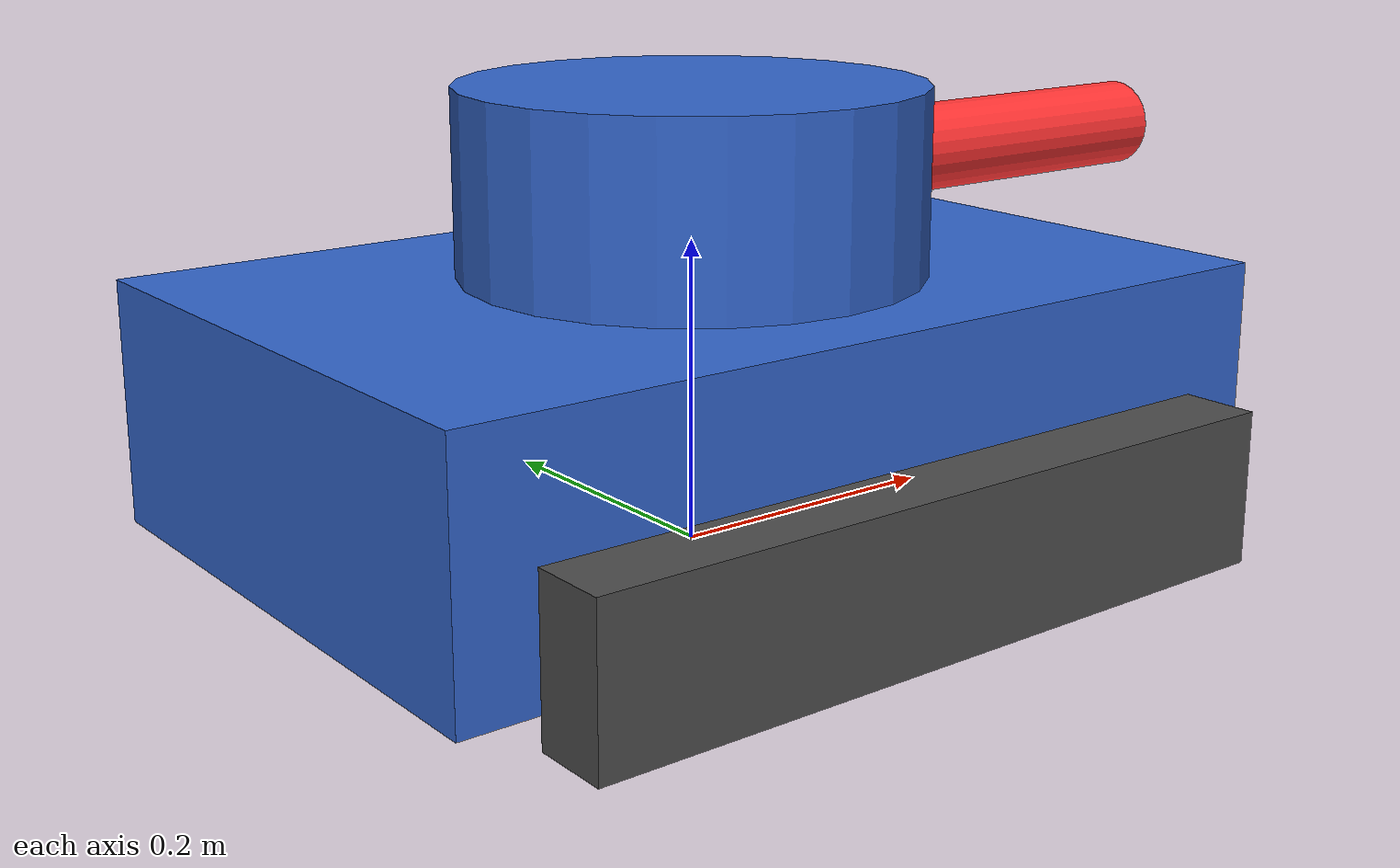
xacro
<?xml version="1.0"?>
<robot xmlns:xacro="http://www.ros.org/wiki/xacro" name="robot_system">

  <!-- ================ 材料定义 ================ -->
  <material name="robot_blue">
    <color rgba="0.2 0.4 0.8 1.0"/>
  </material>
  <material name="gimbal_red">
    <color rgba="1.0 0.2 0.2 1.0"/>
  </material>
  <material name="dark_grey">
    <color rgba="0.3 0.3 0.3 1.0"/>
  </material>

  <!-- ================ 机器人结构 ================ -->
  <!-- 底盘 base_link -->
  <link name="base_link">
    <visual>
      <geometry>
        <!-- 车体：长方体 -->
        <box size="0.6 0.4 0.16"/>
      </geometry>
      <origin xyz="0 0 0.1" rpy="0 0 0"/>
      <material name="robot_blue"/>
    </visual>
    <!-- 左轮 -->
    <visual>
      <geometry>
        <box size="0.5 0.05 0.1"/>
      </geometry>
      <origin xyz="0 0.225 0.05" rpy="0 0 0"/>
      <material name="dark_grey"/>
    </visual>
    <!-- 右轮 -->
    <visual>
      <geometry>
        <box size="0.5 0.05 0.1"/>
      </geometry>
      <origin xyz="0 -0.225 0.05" rpy="0 0 0"/>
      <material name="dark_grey"/>
    </visual>
  </link>

  <!-- 云台 gimbal_link -->
  <link name="gimbal_link">
    <visual>
      <geometry>
        <!-- 炮塔底座：八边形近似为圆柱体 -->
        <cylinder length="0.12" radius="0.15"/>
      </geometry>
      <origin xyz="0 0 0" rpy="0 0 0"/>
      <material name="robot_blue"/>
    </visual>
    <!-- 炮管 -->
    <visual>
      <geometry>
        <cylinder length="0.4" radius="0.03"/>
      </geometry>
      <origin xyz="0.2 0 0" rpy="0 1.5708 0"/>
      <material name="gimbal_red"/>
    </visual>
    <!-- 炮管基座 -->
    <visual>
      <geometry>
        <box size="0.1 0.08 0.08"/>
      </geometry>
      <origin xyz="0 0 0" rpy="0 0 0"/>
      <material name="gimbal_red"/>
    </visual>
  </link>

  <!-- base_link 到 gimbal_link 的关节 -->
  <joint name="base_to_gimbal" type="revolute">
    <parent link="base_link"/>
    <child link="gimbal_link"/>
    <origin xyz="0 0 0.24" rpy="0 0 0"/>
    <axis xyz="0 0 1"/>
    <limit lower="-3.14159" upper="3.14159" effort="10.0" velocity="3.0"/>
  </joint>

</robot>
